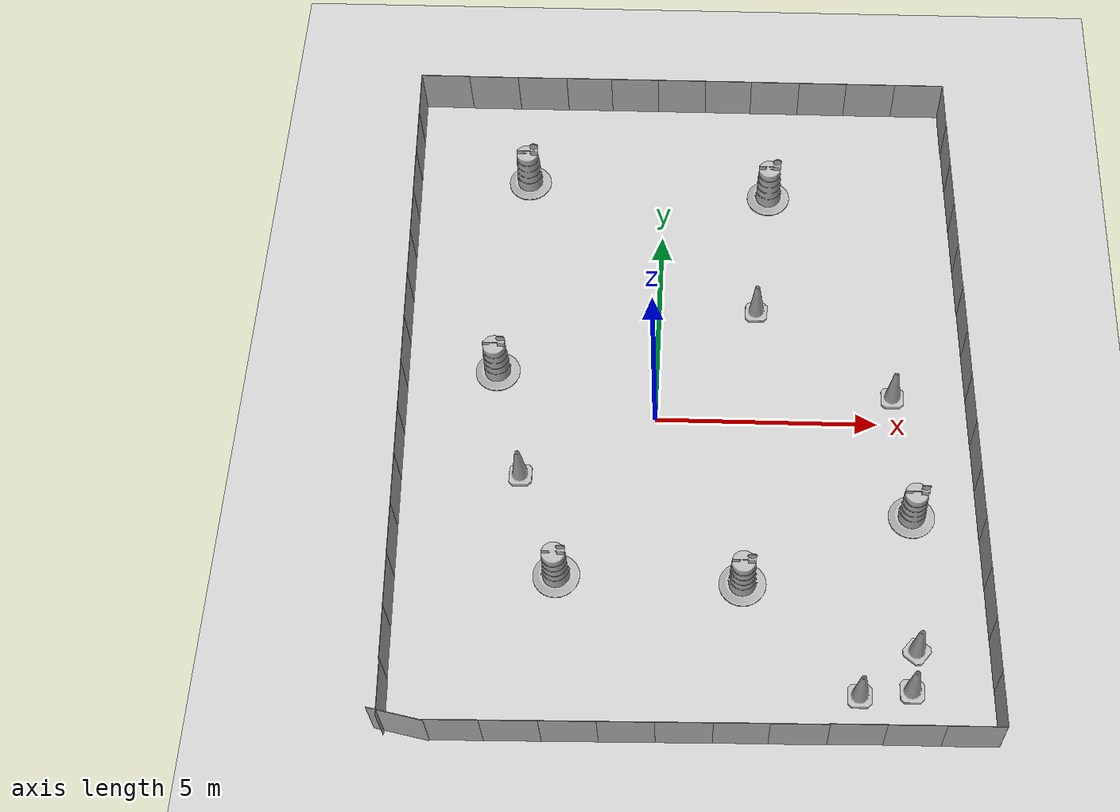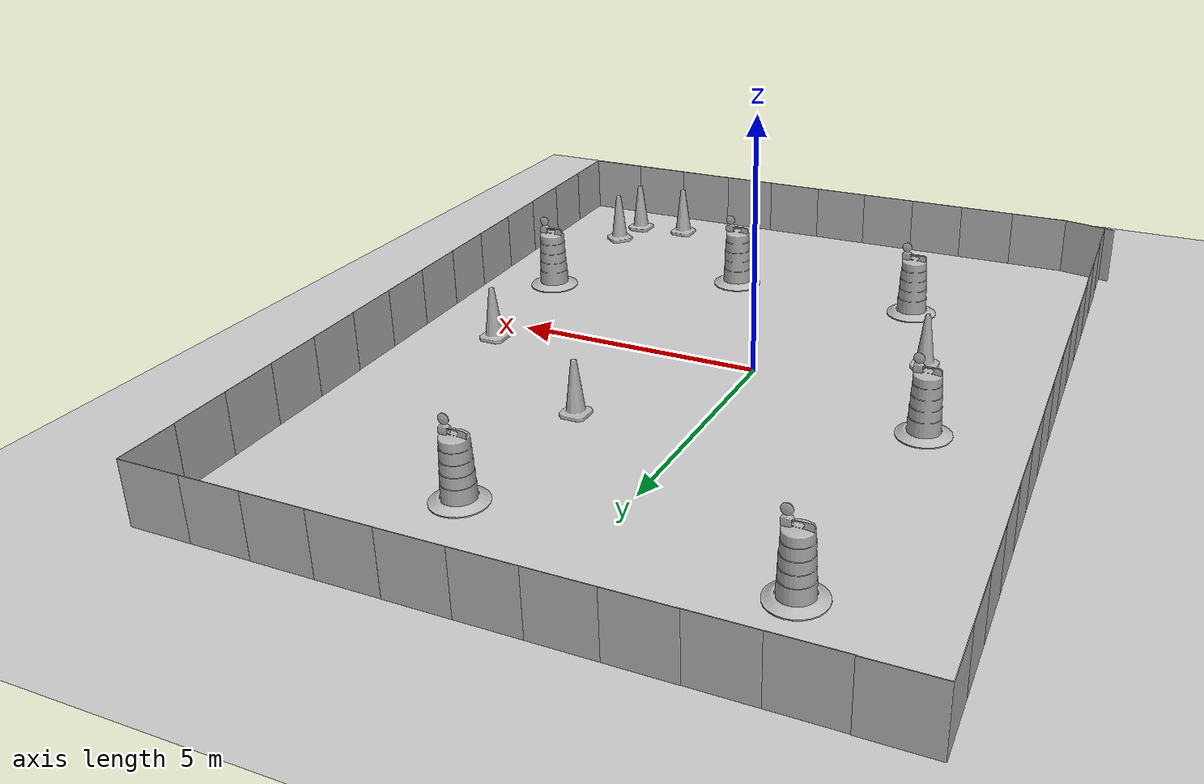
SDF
<sdf version="1.7">
 <world name="default">
  <light name="sun" type="directional">
   <pose>0 0 10 0 -0 0</pose>
   <diffuse>0.8 0.8 0.8 1</diffuse>
   <specular>0.2 0.2 0.2 1</specular>
   <attenuation>
    <range>1000</range>
    <constant>0.9</constant>
    <linear>0.01</linear>
    <quadratic>0.001</quadratic>
   </attenuation>
   <direction>-0.5 0.1 -0.9</direction>
   <spot><inner_angle>0</inner_angle><outer_angle>0</outer_angle><falloff>0</falloff></spot>
  </light>
  <model name="ground_plane">
   <static>1</static>
   <link name="link">
    <collision name="collision">
     <geometry><plane><normal>0 0 1</normal><size>100 100</size></plane></geometry>
     <surface>
      <contact><collide_bitmask>65535</collide_bitmask></contact>
      <friction><ode><mu>100</mu><mu2>50</mu2></ode></friction>
     </surface>
    </collision>
    <visual name="visual">
     <cast_shadows>0</cast_shadows>
     <geometry><plane><normal>0 0 1</normal><size>100 100</size></plane></geometry>
     <material>
      <script><uri>file://media/materials/scripts/gazebo.material</uri><name>Gazebo/Grey</name></script>
     </material>
    </visual>
   </link>
  </model>
  <gravity>0 0 -9.8</gravity>
  <magnetic_field>6e-06 2.3e-05 -4.2e-05</magnetic_field>
  <atmosphere type="adiabatic"/>
  <physics type="ode">
   <max_step_size>0.001</max_step_size>
   <real_time_factor>1</real_time_factor>
   <real_time_update_rate>1000</real_time_update_rate>
  </physics>
  <scene><ambient>0.4 0.4 0.4 1</ambient><background>0.7 0.7 0.7 1</background><shadows>1</shadows></scene>
  <spherical_coordinates>
   <surface_model>EARTH_WGS84</surface_model>
   <latitude_deg>0</latitude_deg>
   <longitude_deg>0</longitude_deg>
   <elevation>0</elevation>
   <heading_deg>0</heading_deg>
  </spherical_coordinates>
  <model name="Construction Barrel">
   <link name="link">
    <inertial>
     <pose>0 0 0.4 0 -0 0</pose>
     <mass>500</mass>
     <inertia><ixx>51.2096</ixx><iyy>51.2096</iyy><izz>25</izz><ixy>0</ixy><ixz>0</ixz><iyz>0</iyz></inertia>
    </inertial>
    <collision name="collision">
     <geometry><mesh><uri>model://construction_barrel/meshes/construction_barrel.dae</uri></mesh></geometry>
    </collision>
    <visual name="visual">
     <geometry><mesh><uri>model://construction_barrel/meshes/construction_barrel.dae</uri></mesh></geometry>
    </visual>
   </link>
   <pose>-3.6623 1.17579 -1e-06 4e-06 -2e-06 -3.4e-05</pose>
  </model>
  <model name="Construction Barrel_0">
   <link name="link">
    <inertial>
     <pose>0 0 0.4 0 -0 0</pose>
     <mass>500</mass>
     <inertia><ixx>51.2096</ixx><iyy>51.2096</iyy><izz>25</izz><ixy>0</ixy><ixz>0</ixz><iyz>0</iyz></inertia>
    </inertial>
    <collision name="collision">
     <geometry><mesh><uri>model://construction_barrel/meshes/construction_barrel.dae</uri></mesh></geometry>
    </collision>
    <visual name="visual">
     <geometry><mesh><uri>model://construction_barrel/meshes/construction_barrel.dae</uri></mesh></geometry>
    </visual>
   </link>
   <pose>-2.00499 -3.90399 -2e-06 8e-06 -4e-06 -8.3e-05</pose>
  </model>
  <model name="Construction Cone">
   <link name="link">
    <collision name="collision">
     <geometry>
      <mesh><scale>10 10 10</scale><uri>model://construction_cone/meshes/construction_cone.dae</uri></mesh>
     </geometry>
    </collision>
    <visual name="visual">
     <geometry>
      <mesh><scale>10 10 10</scale><uri>model://construction_cone/meshes/construction_cone.dae</uri></mesh>
     </geometry>
    </visual>
    <inertial>
     <inertia><ixx>1</ixx><ixy>0</ixy><ixz>0</ixz><iyy>1</iyy><iyz>0</iyz><izz>1</izz></inertia>
     <mass>1</mass>
    </inertial>
   </link>
   <pose>5.54329 -6.34418 -0 0 -1e-06 0</pose>
  </model>
  <model name="Construction Cone_0">
   <link name="link">
    <collision name="collision">
     <geometry>
      <mesh><scale>10 10 10</scale><uri>model://construction_cone/meshes/construction_cone.dae</uri></mesh>
     </geometry>
    </collision>
    <visual name="visual">
     <geometry>
      <mesh><scale>10 10 10</scale><uri>model://construction_cone/meshes/construction_cone.dae</uri></mesh>
     </geometry>
    </visual>
    <inertial>
     <inertia><ixx>1</ixx><ixy>0</ixy><ixz>0</ixz><iyy>1</iyy><iyz>0</iyz><izz>1</izz></inertia>
     <mass>1</mass>
    </inertial>
   </link>
   <pose>5.67572 -5.454 -0 0 -0 0.89393</pose>
  </model>
  <model name="Construction Cone_clone">
   <link name="link">
    <collision name="collision">
     <geometry>
      <mesh><scale>10 10 10</scale><uri>model://construction_cone/meshes/construction_cone.dae</uri></mesh>
     </geometry>
    </collision>
    <visual name="visual">
     <geometry>
      <mesh><scale>10 10 10</scale><uri>model://construction_cone/meshes/construction_cone.dae</uri></mesh>
     </geometry>
    </visual>
    <inertial>
     <inertia><ixx>1</ixx><ixy>0</ixy><ixz>0</ixz><iyy>1</iyy><iyz>0</iyz><izz>1</izz></inertia>
     <mass>1</mass>
    </inertial>
   </link>
   <pose>4.45421 -6.46847 -0 -0 -0 -0</pose>
  </model>
  <model name="Construction Cone_clone_0">
   <link name="link">
    <collision name="collision">
     <geometry>
      <mesh><scale>10 10 10</scale><uri>model://construction_cone/meshes/construction_cone.dae</uri></mesh>
     </geometry>
    </collision>
    <visual name="visual">
     <geometry>
      <mesh><scale>10 10 10</scale><uri>model://construction_cone/meshes/construction_cone.dae</uri></mesh>
     </geometry>
    </visual>
    <inertial>
     <inertia><ixx>1</ixx><ixy>0</ixy><ixz>0</ixz><iyy>1</iyy><iyz>0</iyz><izz>1</izz></inertia>
     <mass>1</mass>
    </inertial>
   </link>
   <pose>5.35731 0.686059 -1e-06 1e-06 -2e-06 -0</pose>
  </model>
  <model name="Construction Cone_clone_1">
   <link name="link">
    <collision name="collision">
     <geometry>
      <mesh><scale>10 10 10</scale><uri>model://construction_cone/meshes/construction_cone.dae</uri></mesh>
     </geometry>
    </collision>
    <visual name="visual">
     <geometry>
      <mesh><scale>10 10 10</scale><uri>model://construction_cone/meshes/construction_cone.dae</uri></mesh>
     </geometry>
    </visual>
    <inertial>
     <inertia><ixx>1</ixx><ixy>0</ixy><ixz>0</ixz><iyy>1</iyy><iyz>0</iyz><izz>1</izz></inertia>
     <mass>1</mass>
    </inertial>
   </link>
   <pose>-2.94787 -1.50407 -2e-06 -3e-06 -1e-06 -0</pose>
  </model>
  <model name="Construction Barrel_0_clone">
   <link name="link">
    <inertial>
     <pose>0 0 0.4 0 -0 0</pose>
     <mass>500</mass>
     <inertia><ixx>51.2096</ixx><iyy>51.2096</iyy><izz>25</izz><ixy>0</ixy><ixz>0</ixz><iyz>0</iyz></inertia>
    </inertial>
    <collision name="collision">
     <geometry><mesh><uri>model://construction_barrel/meshes/construction_barrel.dae</uri></mesh></geometry>
    </collision>
    <visual name="visual">
     <geometry><mesh><uri>model://construction_barrel/meshes/construction_barrel.dae</uri></mesh></geometry>
    </visual>
   </link>
   <pose>5.68304 -2.30533 -2e-06 -7e-06 -4e-06 -5.7e-05</pose>
  </model>
  <model name="Construction Barrel_0_clone_0">
   <link name="link">
    <inertial>
     <pose>0 0 0.4 0 -0 0</pose>
     <mass>500</mass>
     <inertia><ixx>51.2096</ixx><iyy>51.2096</iyy><izz>25</izz><ixy>0</ixy><ixz>0</ixz><iyz>0</iyz></inertia>
    </inertial>
    <collision name="collision">
     <geometry><mesh><uri>model://construction_barrel/meshes/construction_barrel.dae</uri></mesh></geometry>
    </collision>
    <visual name="visual">
     <geometry><mesh><uri>model://construction_barrel/meshes/construction_barrel.dae</uri></mesh></geometry>
    </visual>
   </link>
   <pose>-3.29367 6.58463 -3e-06 6e-06 1.1e-05 -6.9e-05</pose>
  </model>
  <model name="Construction Barrel_0_clone_1">
   <link name="link">
    <inertial>
     <pose>0 0 0.4 0 -0 0</pose>
     <mass>500</mass>
     <inertia><ixx>51.2096</ixx><iyy>51.2096</iyy><izz>25</izz><ixy>0</ixy><ixz>0</ixz><iyz>0</iyz></inertia>
    </inertial>
    <collision name="collision">
     <geometry><mesh><uri>model://construction_barrel/meshes/construction_barrel.dae</uri></mesh></geometry>
    </collision>
    <visual name="visual">
     <geometry><mesh><uri>model://construction_barrel/meshes/construction_barrel.dae</uri></mesh></geometry>
    </visual>
   </link>
   <pose>1.99983 -4.00011 -2e-06 1e-06 8e-06 -3.3e-05</pose>
  </model>
  <model name="Construction Barrel_0_clone_2">
   <link name="link">
    <inertial>
     <pose>0 0 0.4 0 -0 0</pose>
     <mass>500</mass>
     <inertia><ixx>51.2096</ixx><iyy>51.2096</iyy><izz>25</izz><ixy>0</ixy><ixz>0</ixz><iyz>0</iyz></inertia>
    </inertial>
    <collision name="collision">
     <geometry><mesh><uri>model://construction_barrel/meshes/construction_barrel.dae</uri></mesh></geometry>
    </collision>
    <visual name="visual">
     <geometry><mesh><uri>model://construction_barrel/meshes/construction_barrel.dae</uri></mesh></geometry>
    </visual>
   </link>
   <pose>2.51891 6.26792 -2e-06 -7e-06 -4e-06 -5.7e-05</pose>
  </model>
  <model name="Construction Cone_0_clone">
   <link name="link">
    <collision name="collision">
     <geometry>
      <mesh><scale>10 10 10</scale><uri>model://construction_cone/meshes/construction_cone.dae</uri></mesh>
     </geometry>
    </collision>
    <visual name="visual">
     <geometry>
      <mesh><scale>10 10 10</scale><uri>model://construction_cone/meshes/construction_cone.dae</uri></mesh>
     </geometry>
    </visual>
    <inertial>
     <inertia><ixx>1</ixx><ixy>0</ixy><ixz>0</ixz><iyy>1</iyy><iyz>0</iyz><izz>1</izz></inertia>
     <mass>1</mass>
    </inertial>
   </link>
   <pose>2.2531 2.93307 -0 -0 -0 -0</pose>
  </model>
  <model name="nist_maze_wall_120">
   <static>1</static>
   <link name="nist_maze_wall_120_link">
    <collision name="collision">
     <geometry>
      <mesh><uri>model://nist_maze_wall_120/meshes/nist_maze_wall_120.dae</uri><scale>1 1 1</scale></mesh>
     </geometry>
    </collision>
    <visual name="visual">
     <geometry>
      <mesh><uri>model://nist_maze_wall_120/meshes/nist_maze_wall_120.dae</uri><scale>1 1 1</scale></mesh>
     </geometry>
    </visual>
   </link>
   <pose>-5.46498 8.32645 0 0 -0 0</pose>
  </model>
  <model name="nist_maze_wall_120_clone">
   <static>1</static>
   <link name="nist_maze_wall_120_link">
    <collision name="collision">
     <geometry>
      <mesh><uri>model://nist_maze_wall_120/meshes/nist_maze_wall_120.dae</uri><scale>1 1 1</scale></mesh>
     </geometry>
    </collision>
    <visual name="visual">
     <geometry>
      <mesh><uri>model://nist_maze_wall_120/meshes/nist_maze_wall_120.dae</uri><scale>1 1 1</scale></mesh>
     </geometry>
    </visual>
   </link>
   <pose>-4.28769 8.31605 0 0 -0 0</pose>
  </model>
  <model name="nist_maze_wall_120_clone_0">
   <static>1</static>
   <link name="nist_maze_wall_120_link">
    <collision name="collision">
     <geometry>
      <mesh><uri>model://nist_maze_wall_120/meshes/nist_maze_wall_120.dae</uri><scale>1 1 1</scale></mesh>
     </geometry>
    </collision>
    <visual name="visual">
     <geometry>
      <mesh><uri>model://nist_maze_wall_120/meshes/nist_maze_wall_120.dae</uri><scale>1 1 1</scale></mesh>
     </geometry>
    </visual>
   </link>
   <pose>-3.08895 8.31729 0 0 -0 0</pose>
  </model>
  <model name="nist_maze_wall_120_clone_1">
   <static>1</static>
   <link name="nist_maze_wall_120_link">
    <collision name="collision">
     <geometry>
      <mesh><uri>model://nist_maze_wall_120/meshes/nist_maze_wall_120.dae</uri><scale>1 1 1</scale></mesh>
     </geometry>
    </collision>
    <visual name="visual">
     <geometry>
      <mesh><uri>model://nist_maze_wall_120/meshes/nist_maze_wall_120.dae</uri><scale>1 1 1</scale></mesh>
     </geometry>
    </visual>
   </link>
   <pose>-1.97746 8.32245 0 0 -0 0</pose>
  </model>
  <model name="nist_maze_wall_120_clone_2">
   <static>1</static>
   <link name="nist_maze_wall_120_link">
    <collision name="collision">
     <geometry>
      <mesh><uri>model://nist_maze_wall_120/meshes/nist_maze_wall_120.dae</uri><scale>1 1 1</scale></mesh>
     </geometry>
    </collision>
    <visual name="visual">
     <geometry>
      <mesh><uri>model://nist_maze_wall_120/meshes/nist_maze_wall_120.dae</uri><scale>1 1 1</scale></mesh>
     </geometry>
    </visual>
   </link>
   <pose>-0.822699 8.32269 0 0 -0 0</pose>
  </model>
  <model name="nist_maze_wall_120_clone_3">
   <static>1</static>
   <link name="nist_maze_wall_120_link">
    <collision name="collision">
     <geometry>
      <mesh><uri>model://nist_maze_wall_120/meshes/nist_maze_wall_120.dae</uri><scale>1 1 1</scale></mesh>
     </geometry>
    </collision>
    <visual name="visual">
     <geometry>
      <mesh><uri>model://nist_maze_wall_120/meshes/nist_maze_wall_120.dae</uri><scale>1 1 1</scale></mesh>
     </geometry>
    </visual>
   </link>
   <pose>0.340089 8.32286 0 0 -0 0</pose>
  </model>
  <model name="nist_maze_wall_120_clone_4">
   <static>1</static>
   <link name="nist_maze_wall_120_link">
    <collision name="collision">
     <geometry>
      <mesh><uri>model://nist_maze_wall_120/meshes/nist_maze_wall_120.dae</uri><scale>1 1 1</scale></mesh>
     </geometry>
    </collision>
    <visual name="visual">
     <geometry>
      <mesh><uri>model://nist_maze_wall_120/meshes/nist_maze_wall_120.dae</uri><scale>1 1 1</scale></mesh>
     </geometry>
    </visual>
   </link>
   <pose>1.48489 8.32371 0 0 -0 0</pose>
  </model>
  <model name="nist_maze_wall_120_clone_5">
   <static>1</static>
   <link name="nist_maze_wall_120_link">
    <collision name="collision">
     <geometry>
      <mesh><uri>model://nist_maze_wall_120/meshes/nist_maze_wall_120.dae</uri><scale>1 1 1</scale></mesh>
     </geometry>
    </collision>
    <visual name="visual">
     <geometry>
      <mesh><uri>model://nist_maze_wall_120/meshes/nist_maze_wall_120.dae</uri><scale>1 1 1</scale></mesh>
     </geometry>
    </visual>
   </link>
   <pose>2.65772 8.32002 0 0 -0 0</pose>
  </model>
  <model name="nist_maze_wall_120_clone_6">
   <static>1</static>
   <link name="nist_maze_wall_120_link">
    <collision name="collision">
     <geometry>
      <mesh><uri>model://nist_maze_wall_120/meshes/nist_maze_wall_120.dae</uri><scale>1 1 1</scale></mesh>
     </geometry>
    </collision>
    <visual name="visual">
     <geometry>
      <mesh><uri>model://nist_maze_wall_120/meshes/nist_maze_wall_120.dae</uri><scale>1 1 1</scale></mesh>
     </geometry>
    </visual>
   </link>
   <pose>3.83049 8.31808 0 0 -0 0</pose>
  </model>
  <model name="nist_maze_wall_120_clone_7">
   <static>1</static>
   <link name="nist_maze_wall_120_link">
    <collision name="collision">
     <geometry>
      <mesh><uri>model://nist_maze_wall_120/meshes/nist_maze_wall_120.dae</uri><scale>1 1 1</scale></mesh>
     </geometry>
    </collision>
    <visual name="visual">
     <geometry>
      <mesh><uri>model://nist_maze_wall_120/meshes/nist_maze_wall_120.dae</uri><scale>1 1 1</scale></mesh>
     </geometry>
    </visual>
   </link>
   <pose>4.98784 8.3153 0 0 -0 0</pose>
  </model>
  <model name="nist_maze_wall_120_clone_8">
   <static>1</static>
   <link name="nist_maze_wall_120_link">
    <collision name="collision">
     <geometry>
      <mesh><uri>model://nist_maze_wall_120/meshes/nist_maze_wall_120.dae</uri><scale>1 1 1</scale></mesh>
     </geometry>
    </collision>
    <visual name="visual">
     <geometry>
      <mesh><uri>model://nist_maze_wall_120/meshes/nist_maze_wall_120.dae</uri><scale>1 1 1</scale></mesh>
     </geometry>
    </visual>
   </link>
   <pose>6.15395 8.31647 0 0 -0 0</pose>
  </model>
  <model name="nist_maze_wall_120_clone_9">
   <static>1</static>
   <link name="nist_maze_wall_120_link">
    <collision name="collision">
     <geometry>
      <mesh><uri>model://nist_maze_wall_120/meshes/nist_maze_wall_120.dae</uri><scale>1 1 1</scale></mesh>
     </geometry>
    </collision>
    <visual name="visual">
     <geometry>
      <mesh><uri>model://nist_maze_wall_120/meshes/nist_maze_wall_120.dae</uri><scale>1 1 1</scale></mesh>
     </geometry>
    </visual>
   </link>
   <pose>7.36294 8.32825 0 0 -0 1.59454</pose>
  </model>
  <model name="nist_maze_wall_120_clone_9_clone">
   <static>1</static>
   <link name="nist_maze_wall_120_link">
    <collision name="collision">
     <geometry>
      <mesh><uri>model://nist_maze_wall_120/meshes/nist_maze_wall_120.dae</uri><scale>1 1 1</scale></mesh>
     </geometry>
    </collision>
    <visual name="visual">
     <geometry>
      <mesh><uri>model://nist_maze_wall_120/meshes/nist_maze_wall_120.dae</uri><scale>1 1 1</scale></mesh>
     </geometry>
    </visual>
   </link>
   <pose>6.20229 7.11254 0 0 0 -1.53987</pose>
  </model>
  <model name="nist_maze_wall_120_clone_9_clone_0">
   <static>1</static>
   <link name="nist_maze_wall_120_link">
    <collision name="collision">
     <geometry>
      <mesh><uri>model://nist_maze_wall_120/meshes/nist_maze_wall_120.dae</uri><scale>1 1 1</scale></mesh>
     </geometry>
    </collision>
    <visual name="visual">
     <geometry>
      <mesh><uri>model://nist_maze_wall_120/meshes/nist_maze_wall_120.dae</uri><scale>1 1 1</scale></mesh>
     </geometry>
    </visual>
   </link>
   <pose>6.23902 5.93505 0 0 0 -1.53987</pose>
  </model>
  <model name="nist_maze_wall_120_clone_9_clone_1">
   <static>1</static>
   <link name="nist_maze_wall_120_link">
    <collision name="collision">
     <geometry>
      <mesh><uri>model://nist_maze_wall_120/meshes/nist_maze_wall_120.dae</uri><scale>1 1 1</scale></mesh>
     </geometry>
    </collision>
    <visual name="visual">
     <geometry>
      <mesh><uri>model://nist_maze_wall_120/meshes/nist_maze_wall_120.dae</uri><scale>1 1 1</scale></mesh>
     </geometry>
    </visual>
   </link>
   <pose>6.27639 4.75611 0 0 0 -1.53987</pose>
  </model>
  <model name="nist_maze_wall_120_clone_9_clone_2">
   <static>1</static>
   <link name="nist_maze_wall_120_link">
    <collision name="collision">
     <geometry>
      <mesh><uri>model://nist_maze_wall_120/meshes/nist_maze_wall_120.dae</uri><scale>1 1 1</scale></mesh>
     </geometry>
    </collision>
    <visual name="visual">
     <geometry>
      <mesh><uri>model://nist_maze_wall_120/meshes/nist_maze_wall_120.dae</uri><scale>1 1 1</scale></mesh>
     </geometry>
    </visual>
   </link>
   <pose>6.31539 3.57405 0 0 0 -1.53987</pose>
  </model>
  <model name="nist_maze_wall_120_clone_9_clone_3">
   <static>1</static>
   <link name="nist_maze_wall_120_link">
    <collision name="collision">
     <geometry>
      <mesh><uri>model://nist_maze_wall_120/meshes/nist_maze_wall_120.dae</uri><scale>1 1 1</scale></mesh>
     </geometry>
    </collision>
    <visual name="visual">
     <geometry>
      <mesh><uri>model://nist_maze_wall_120/meshes/nist_maze_wall_120.dae</uri><scale>1 1 1</scale></mesh>
     </geometry>
    </visual>
   </link>
   <pose>6.36064 2.39757 0 0 0 -1.53987</pose>
  </model>
  <model name="nist_maze_wall_120_clone_9_clone_4">
   <static>1</static>
   <link name="nist_maze_wall_120_link">
    <collision name="collision">
     <geometry>
      <mesh><uri>model://nist_maze_wall_120/meshes/nist_maze_wall_120.dae</uri><scale>1 1 1</scale></mesh>
     </geometry>
    </collision>
    <visual name="visual">
     <geometry>
      <mesh><uri>model://nist_maze_wall_120/meshes/nist_maze_wall_120.dae</uri><scale>1 1 1</scale></mesh>
     </geometry>
    </visual>
   </link>
   <pose>6.39718 1.22862 0 0 0 -1.53987</pose>
  </model>
  <model name="nist_maze_wall_120_clone_9_clone_5">
   <static>1</static>
   <link name="nist_maze_wall_120_link">
    <collision name="collision">
     <geometry>
      <mesh><uri>model://nist_maze_wall_120/meshes/nist_maze_wall_120.dae</uri><scale>1 1 1</scale></mesh>
     </geometry>
    </collision>
    <visual name="visual">
     <geometry>
      <mesh><uri>model://nist_maze_wall_120/meshes/nist_maze_wall_120.dae</uri><scale>1 1 1</scale></mesh>
     </geometry>
    </visual>
   </link>
   <pose>6.43424 0.074346 0 0 0 -1.53987</pose>
  </model>
  <model name="nist_maze_wall_120_clone_9_clone_6">
   <static>1</static>
   <link name="nist_maze_wall_120_link">
    <collision name="collision">
     <geometry>
      <mesh><uri>model://nist_maze_wall_120/meshes/nist_maze_wall_120.dae</uri><scale>1 1 1</scale></mesh>
     </geometry>
    </collision>
    <visual name="visual">
     <geometry>
      <mesh><uri>model://nist_maze_wall_120/meshes/nist_maze_wall_120.dae</uri><scale>1 1 1</scale></mesh>
     </geometry>
    </visual>
   </link>
   <pose>6.47454 -1.07921 0 0 0 -1.53987</pose>
  </model>
  <model name="nist_maze_wall_120_clone_9_clone_7">
   <static>1</static>
   <link name="nist_maze_wall_120_link">
    <collision name="collision">
     <geometry>
      <mesh><uri>model://nist_maze_wall_120/meshes/nist_maze_wall_120.dae</uri><scale>1 1 1</scale></mesh>
     </geometry>
    </collision>
    <visual name="visual">
     <geometry>
      <mesh><uri>model://nist_maze_wall_120/meshes/nist_maze_wall_120.dae</uri><scale>1 1 1</scale></mesh>
     </geometry>
    </visual>
   </link>
   <pose>6.51079 -2.26704 0 0 0 -1.53987</pose>
  </model>
  <model name="nist_maze_wall_120_clone_9_clone_8">
   <static>1</static>
   <link name="nist_maze_wall_120_link">
    <collision name="collision">
     <geometry>
      <mesh><uri>model://nist_maze_wall_120/meshes/nist_maze_wall_120.dae</uri><scale>1 1 1</scale></mesh>
     </geometry>
    </collision>
    <visual name="visual">
     <geometry>
      <mesh><uri>model://nist_maze_wall_120/meshes/nist_maze_wall_120.dae</uri><scale>1 1 1</scale></mesh>
     </geometry>
    </visual>
   </link>
   <pose>6.5511 -3.41387 0 0 0 -1.53987</pose>
  </model>
  <model name="nist_maze_wall_120_clone_9_clone_9">
   <static>1</static>
   <link name="nist_maze_wall_120_link">
    <collision name="collision">
     <geometry>
      <mesh><uri>model://nist_maze_wall_120/meshes/nist_maze_wall_120.dae</uri><scale>1 1 1</scale></mesh>
     </geometry>
    </collision>
    <visual name="visual">
     <geometry>
      <mesh><uri>model://nist_maze_wall_120/meshes/nist_maze_wall_120.dae</uri><scale>1 1 1</scale></mesh>
     </geometry>
    </visual>
   </link>
   <pose>6.58947 -4.56861 0 0 0 -1.53987</pose>
  </model>
  <model name="nist_maze_wall_120_clone_9_clone_10">
   <static>1</static>
   <link name="nist_maze_wall_120_link">
    <collision name="collision">
     <geometry>
      <mesh><uri>model://nist_maze_wall_120/meshes/nist_maze_wall_120.dae</uri><scale>1 1 1</scale></mesh>
     </geometry>
    </collision>
    <visual name="visual">
     <geometry>
      <mesh><uri>model://nist_maze_wall_120/meshes/nist_maze_wall_120.dae</uri><scale>1 1 1</scale></mesh>
     </geometry>
    </visual>
   </link>
   <pose>6.62726 -5.73223 0 0 0 -1.53987</pose>
  </model>
  <model name="nist_maze_wall_120_clone_9_clone_11">
   <static>1</static>
   <link name="nist_maze_wall_120_link">
    <collision name="collision">
     <geometry>
      <mesh><uri>model://nist_maze_wall_120/meshes/nist_maze_wall_120.dae</uri><scale>1 1 1</scale></mesh>
     </geometry>
    </collision>
    <visual name="visual">
     <geometry>
      <mesh><uri>model://nist_maze_wall_120/meshes/nist_maze_wall_120.dae</uri><scale>1 1 1</scale></mesh>
     </geometry>
    </visual>
   </link>
   <pose>6.66488 -6.89576 0 0 0 -1.53987</pose>
  </model>
  <model name="nist_maze_wall_120_clone_9_clone_12_clone">
   <static>1</static>
   <link name="nist_maze_wall_120_link">
    <collision name="collision">
     <geometry>
      <mesh><uri>model://nist_maze_wall_120/meshes/nist_maze_wall_120.dae</uri><scale>1 1 1</scale></mesh>
     </geometry>
    </collision>
    <visual name="visual">
     <geometry>
      <mesh><uri>model://nist_maze_wall_120/meshes/nist_maze_wall_120.dae</uri><scale>1 1 1</scale></mesh>
     </geometry>
    </visual>
   </link>
   <pose>5.48794 -6.88443 0 0 0 -3.12807</pose>
  </model>
  <model name="nist_maze_wall_120_clone_9_clone_12_clone_0">
   <static>1</static>
   <link name="nist_maze_wall_120_link">
    <collision name="collision">
     <geometry>
      <mesh><uri>model://nist_maze_wall_120/meshes/nist_maze_wall_120.dae</uri><scale>1 1 1</scale></mesh>
     </geometry>
    </collision>
    <visual name="visual">
     <geometry>
      <mesh><uri>model://nist_maze_wall_120/meshes/nist_maze_wall_120.dae</uri><scale>1 1 1</scale></mesh>
     </geometry>
    </visual>
   </link>
   <pose>4.30462 -6.89366 0 0 0 -3.12807</pose>
  </model>
  <model name="nist_maze_wall_120_clone_9_clone_12_clone_1">
   <static>1</static>
   <link name="nist_maze_wall_120_link">
    <collision name="collision">
     <geometry>
      <mesh><uri>model://nist_maze_wall_120/meshes/nist_maze_wall_120.dae</uri><scale>1 1 1</scale></mesh>
     </geometry>
    </collision>
    <visual name="visual">
     <geometry>
      <mesh><uri>model://nist_maze_wall_120/meshes/nist_maze_wall_120.dae</uri><scale>1 1 1</scale></mesh>
     </geometry>
    </visual>
   </link>
   <pose>3.14454 -6.91957 0 0 0 -3.12807</pose>
  </model>
  <model name="nist_maze_wall_120_clone_9_clone_12_clone_2">
   <static>1</static>
   <link name="nist_maze_wall_120_link">
    <collision name="collision">
     <geometry>
      <mesh><uri>model://nist_maze_wall_120/meshes/nist_maze_wall_120.dae</uri><scale>1 1 1</scale></mesh>
     </geometry>
    </collision>
    <visual name="visual">
     <geometry>
      <mesh><uri>model://nist_maze_wall_120/meshes/nist_maze_wall_120.dae</uri><scale>1 1 1</scale></mesh>
     </geometry>
    </visual>
   </link>
   <pose>1.97403 -6.93157 0 0 0 -3.12807</pose>
  </model>
  <model name="nist_maze_wall_120_clone_9_clone_12_clone_3">
   <static>1</static>
   <link name="nist_maze_wall_120_link">
    <collision name="collision">
     <geometry>
      <mesh><uri>model://nist_maze_wall_120/meshes/nist_maze_wall_120.dae</uri><scale>1 1 1</scale></mesh>
     </geometry>
    </collision>
    <visual name="visual">
     <geometry>
      <mesh><uri>model://nist_maze_wall_120/meshes/nist_maze_wall_120.dae</uri><scale>1 1 1</scale></mesh>
     </geometry>
    </visual>
   </link>
   <pose>0.818822 -6.94962 0 0 0 -3.12807</pose>
  </model>
  <model name="nist_maze_wall_120_clone_9_clone_12_clone_4">
   <static>1</static>
   <link name="nist_maze_wall_120_link">
    <collision name="collision">
     <geometry>
      <mesh><uri>model://nist_maze_wall_120/meshes/nist_maze_wall_120.dae</uri><scale>1 1 1</scale></mesh>
     </geometry>
    </collision>
    <visual name="visual">
     <geometry>
      <mesh><uri>model://nist_maze_wall_120/meshes/nist_maze_wall_120.dae</uri><scale>1 1 1</scale></mesh>
     </geometry>
    </visual>
   </link>
   <pose>-0.350487 -6.96696 0 0 0 -3.12807</pose>
  </model>
  <model name="nist_maze_wall_120_clone_9_clone_12_clone_5">
   <static>1</static>
   <link name="nist_maze_wall_120_link">
    <collision name="collision">
     <geometry>
      <mesh><uri>model://nist_maze_wall_120/meshes/nist_maze_wall_120.dae</uri><scale>1 1 1</scale></mesh>
     </geometry>
    </collision>
    <visual name="visual">
     <geometry>
      <mesh><uri>model://nist_maze_wall_120/meshes/nist_maze_wall_120.dae</uri><scale>1 1 1</scale></mesh>
     </geometry>
    </visual>
   </link>
   <pose>-1.50901 -6.9832 0 0 0 -3.12807</pose>
  </model>
  <model name="nist_maze_wall_120_clone_9_clone_12_clone_6">
   <static>1</static>
   <link name="nist_maze_wall_120_link">
    <collision name="collision">
     <geometry>
      <mesh><uri>model://nist_maze_wall_120/meshes/nist_maze_wall_120.dae</uri><scale>1 1 1</scale></mesh>
     </geometry>
    </collision>
    <visual name="visual">
     <geometry>
      <mesh><uri>model://nist_maze_wall_120/meshes/nist_maze_wall_120.dae</uri><scale>1 1 1</scale></mesh>
     </geometry>
    </visual>
   </link>
   <pose>-2.67758 -7.00059 0 0 0 -3.12807</pose>
  </model>
  <model name="nist_maze_wall_120_clone_9_clone_12_clone_7">
   <static>1</static>
   <link name="nist_maze_wall_120_link">
    <collision name="collision">
     <geometry>
      <mesh><uri>model://nist_maze_wall_120/meshes/nist_maze_wall_120.dae</uri><scale>1 1 1</scale></mesh>
     </geometry>
    </collision>
    <visual name="visual">
     <geometry>
      <mesh><uri>model://nist_maze_wall_120/meshes/nist_maze_wall_120.dae</uri><scale>1 1 1</scale></mesh>
     </geometry>
    </visual>
   </link>
   <pose>-5.43624 8.36216 0 0 -0 1.61451</pose>
  </model>
  <model name="nist_maze_wall_120_clone_9_clone_12_clone_7_clone">
   <static>1</static>
   <link name="nist_maze_wall_120_link">
    <collision name="collision">
     <geometry>
      <mesh><uri>model://nist_maze_wall_120/meshes/nist_maze_wall_120.dae</uri><scale>1 1 1</scale></mesh>
     </geometry>
    </collision>
    <visual name="visual">
     <geometry>
      <mesh><uri>model://nist_maze_wall_120/meshes/nist_maze_wall_120.dae</uri><scale>1 1 1</scale></mesh>
     </geometry>
    </visual>
   </link>
   <pose>-5.38527 7.18507 0 0 -0 1.61451</pose>
  </model>
  <model name="nist_maze_wall_120_clone_9_clone_12_clone_7_clone_clone">
   <static>1</static>
   <link name="nist_maze_wall_120_link">
    <collision name="collision">
     <geometry>
      <mesh><uri>model://nist_maze_wall_120/meshes/nist_maze_wall_120.dae</uri><scale>1 1 1</scale></mesh>
     </geometry>
    </collision>
    <visual name="visual">
     <geometry>
      <mesh><uri>model://nist_maze_wall_120/meshes/nist_maze_wall_120.dae</uri><scale>1 1 1</scale></mesh>
     </geometry>
    </visual>
   </link>
   <pose>-5.33489 6.00049 0 0 -0 1.61451</pose>
  </model>
  <model name="nist_maze_wall_120_clone_9_clone_12_clone_7_clone_clone_0">
   <static>1</static>
   <link name="nist_maze_wall_120_link">
    <collision name="collision">
     <geometry>
      <mesh><uri>model://nist_maze_wall_120/meshes/nist_maze_wall_120.dae</uri><scale>1 1 1</scale></mesh>
     </geometry>
    </collision>
    <visual name="visual">
     <geometry>
      <mesh><uri>model://nist_maze_wall_120/meshes/nist_maze_wall_120.dae</uri><scale>1 1 1</scale></mesh>
     </geometry>
    </visual>
   </link>
   <pose>-5.28221 4.83125 0 0 -0 1.61451</pose>
  </model>
  <model name="nist_maze_wall_120_clone_9_clone_12_clone_7_clone_clone_1">
   <static>1</static>
   <link name="nist_maze_wall_120_link">
    <collision name="collision">
     <geometry>
      <mesh><uri>model://nist_maze_wall_120/meshes/nist_maze_wall_120.dae</uri><scale>1 1 1</scale></mesh>
     </geometry>
    </collision>
    <visual name="visual">
     <geometry>
      <mesh><uri>model://nist_maze_wall_120/meshes/nist_maze_wall_120.dae</uri><scale>1 1 1</scale></mesh>
     </geometry>
    </visual>
   </link>
   <pose>-5.22913 3.6554 0 0 -0 1.61451</pose>
  </model>
  <model name="nist_maze_wall_120_clone_9_clone_12_clone_7_clone_clone_2">
   <static>1</static>
   <link name="nist_maze_wall_120_link">
    <collision name="collision">
     <geometry>
      <mesh><uri>model://nist_maze_wall_120/meshes/nist_maze_wall_120.dae</uri><scale>1 1 1</scale></mesh>
     </geometry>
    </collision>
    <visual name="visual">
     <geometry>
      <mesh><uri>model://nist_maze_wall_120/meshes/nist_maze_wall_120.dae</uri><scale>1 1 1</scale></mesh>
     </geometry>
    </visual>
   </link>
   <pose>-5.1768 2.4835 0 0 -0 1.61451</pose>
  </model>
  <model name="nist_maze_wall_120_clone_9_clone_12_clone_7_clone_clone_3">
   <static>1</static>
   <link name="nist_maze_wall_120_link">
    <collision name="collision">
     <geometry>
      <mesh><uri>model://nist_maze_wall_120/meshes/nist_maze_wall_120.dae</uri><scale>1 1 1</scale></mesh>
     </geometry>
    </collision>
    <visual name="visual">
     <geometry>
      <mesh><uri>model://nist_maze_wall_120/meshes/nist_maze_wall_120.dae</uri><scale>1 1 1</scale></mesh>
     </geometry>
    </visual>
   </link>
   <pose>-5.1229 1.3026 0 0 -0 1.61451</pose>
  </model>
  <model name="nist_maze_wall_120_clone_9_clone_12_clone_7_clone_clone_4">
   <static>1</static>
   <link name="nist_maze_wall_120_link">
    <collision name="collision">
     <geometry>
      <mesh><uri>model://nist_maze_wall_120/meshes/nist_maze_wall_120.dae</uri><scale>1 1 1</scale></mesh>
     </geometry>
    </collision>
    <visual name="visual">
     <geometry>
      <mesh><uri>model://nist_maze_wall_120/meshes/nist_maze_wall_120.dae</uri><scale>1 1 1</scale></mesh>
     </geometry>
    </visual>
   </link>
   <pose>-5.06892 0.118701 0 0 -0 1.61451</pose>
  </model>
  <model name="nist_maze_wall_120_clone_9_clone_12_clone_7_clone_clone_5">
   <static>1</static>
   <link name="nist_maze_wall_120_link">
    <collision name="collision">
     <geometry>
      <mesh><uri>model://nist_maze_wall_120/meshes/nist_maze_wall_120.dae</uri><scale>1 1 1</scale></mesh>
     </geometry>
    </collision>
    <visual name="visual">
     <geometry>
      <mesh><uri>model://nist_maze_wall_120/meshes/nist_maze_wall_120.dae</uri><scale>1 1 1</scale></mesh>
     </geometry>
    </visual>
   </link>
   <pose>-5.01884 -1.04959 0 0 -0 1.61451</pose>
  </model>
  <model name="nist_maze_wall_120_clone_9_clone_12_clone_7_clone_clone_6">
   <static>1</static>
   <link name="nist_maze_wall_120_link">
    <collision name="collision">
     <geometry>
      <mesh><uri>model://nist_maze_wall_120/meshes/nist_maze_wall_120.dae</uri><scale>1 1 1</scale></mesh>
     </geometry>
    </collision>
    <visual name="visual">
     <geometry>
      <mesh><uri>model://nist_maze_wall_120/meshes/nist_maze_wall_120.dae</uri><scale>1 1 1</scale></mesh>
     </geometry>
    </visual>
   </link>
   <pose>-4.9668 -2.22145 0 0 -0 1.61451</pose>
  </model>
  <model name="nist_maze_wall_120_clone_9_clone_12_clone_7_clone_clone_7">
   <static>1</static>
   <link name="nist_maze_wall_120_link">
    <collision name="collision">
     <geometry>
      <mesh><uri>model://nist_maze_wall_120/meshes/nist_maze_wall_120.dae</uri><scale>1 1 1</scale></mesh>
     </geometry>
    </collision>
    <visual name="visual">
     <geometry>
      <mesh><uri>model://nist_maze_wall_120/meshes/nist_maze_wall_120.dae</uri><scale>1 1 1</scale></mesh>
     </geometry>
    </visual>
   </link>
   <pose>-4.915 -3.40213 0 0 -0 1.61451</pose>
  </model>
  <model name="nist_maze_wall_120_clone_9_clone_12_clone_7_clone_clone_8">
   <static>1</static>
   <link name="nist_maze_wall_120_link">
    <collision name="collision">
     <geometry>
      <mesh><uri>model://nist_maze_wall_120/meshes/nist_maze_wall_120.dae</uri><scale>1 1 1</scale></mesh>
     </geometry>
    </collision>
    <visual name="visual">
     <geometry>
      <mesh><uri>model://nist_maze_wall_120/meshes/nist_maze_wall_120.dae</uri><scale>1 1 1</scale></mesh>
     </geometry>
    </visual>
   </link>
   <pose>-4.86016 -4.58874 0 0 -0 1.61451</pose>
  </model>
  <model name="nist_maze_wall_120_clone_9_clone_12_clone_7_clone_clone_9">
   <static>1</static>
   <link name="nist_maze_wall_120_link">
    <collision name="collision">
     <geometry>
      <mesh><uri>model://nist_maze_wall_120/meshes/nist_maze_wall_120.dae</uri><scale>1 1 1</scale></mesh>
     </geometry>
    </collision>
    <visual name="visual">
     <geometry>
      <mesh><uri>model://nist_maze_wall_120/meshes/nist_maze_wall_120.dae</uri><scale>1 1 1</scale></mesh>
     </geometry>
    </visual>
   </link>
   <pose>-4.80714 -5.76649 0 0 -0 1.61451</pose>
  </model>
  <model name="nist_maze_wall_120_clone_9_clone_12_clone_7_clone_clone_10">
   <static>1</static>
   <link name="nist_maze_wall_120_link">
    <collision name="collision">
     <geometry>
      <mesh><uri>model://nist_maze_wall_120/meshes/nist_maze_wall_120.dae</uri><scale>1 1 1</scale></mesh>
     </geometry>
    </collision>
    <visual name="visual">
     <geometry>
      <mesh><uri>model://nist_maze_wall_120/meshes/nist_maze_wall_120.dae</uri><scale>1 1 1</scale></mesh>
     </geometry>
    </visual>
   </link>
   <pose>-4.74248 -6.93966 0 0 -0 1.61451</pose>
  </model>
  <model name="nist_maze_wall_120_clone_9_clone_12_clone_6_clone">
   <static>1</static>
   <link name="nist_maze_wall_120_link">
    <collision name="collision">
     <geometry>
      <mesh><uri>model://nist_maze_wall_120/meshes/nist_maze_wall_120.dae</uri><scale>1 1 1</scale></mesh>
     </geometry>
    </collision>
    <visual name="visual">
     <geometry>
      <mesh><uri>model://nist_maze_wall_120/meshes/nist_maze_wall_120.dae</uri><scale>1 1 1</scale></mesh>
     </geometry>
    </visual>
   </link>
   <pose>-3.85876 -7.01629 0 0 0 -3.12807</pose>
  </model>
  <model name="nist_maze_wall_120_clone_9_clone_12_clone_6_clone_0">
   <static>1</static>
   <link name="nist_maze_wall_120_link">
    <collision name="collision">
     <geometry>
      <mesh><uri>model://nist_maze_wall_120/meshes/nist_maze_wall_120.dae</uri><scale>1 1 1</scale></mesh>
     </geometry>
    </collision>
    <visual name="visual">
     <geometry>
      <mesh><uri>model://nist_maze_wall_120/meshes/nist_maze_wall_120.dae</uri><scale>1 1 1</scale></mesh>
     </geometry>
    </visual>
   </link>
   <pose>-4.81946 -6.93393 0 0 -0 2.93392</pose>
  </model>
  <model name="nist_maze_wall_120_clone_9_clone_12_clone_clone">
   <static>1</static>
   <link name="nist_maze_wall_120_link">
    <collision name="collision">
     <geometry>
      <mesh><uri>model://nist_maze_wall_120/meshes/nist_maze_wall_120.dae</uri><scale>1 1 1</scale></mesh>
     </geometry>
    </collision>
    <visual name="visual">
     <geometry>
      <mesh><uri>model://nist_maze_wall_120/meshes/nist_maze_wall_120.dae</uri><scale>1 1 1</scale></mesh>
     </geometry>
    </visual>
   </link>
   <pose>6.6774 -6.87608 0 0 0 -3.12807</pose>
  </model>
 </world>
</sdf>
